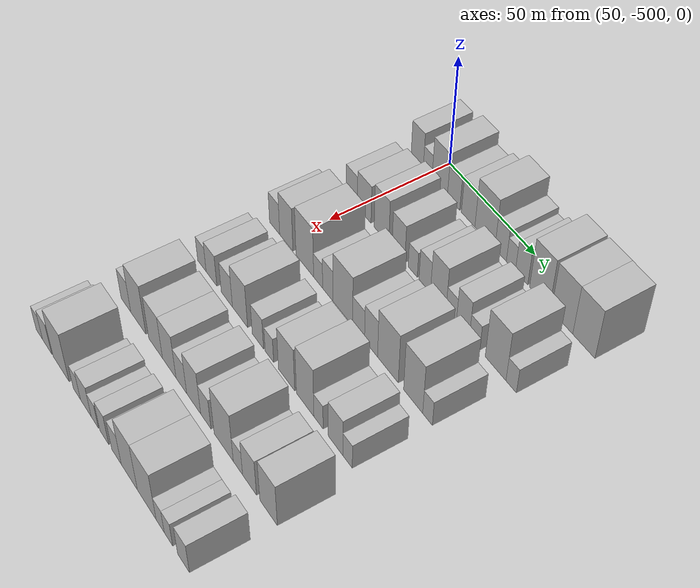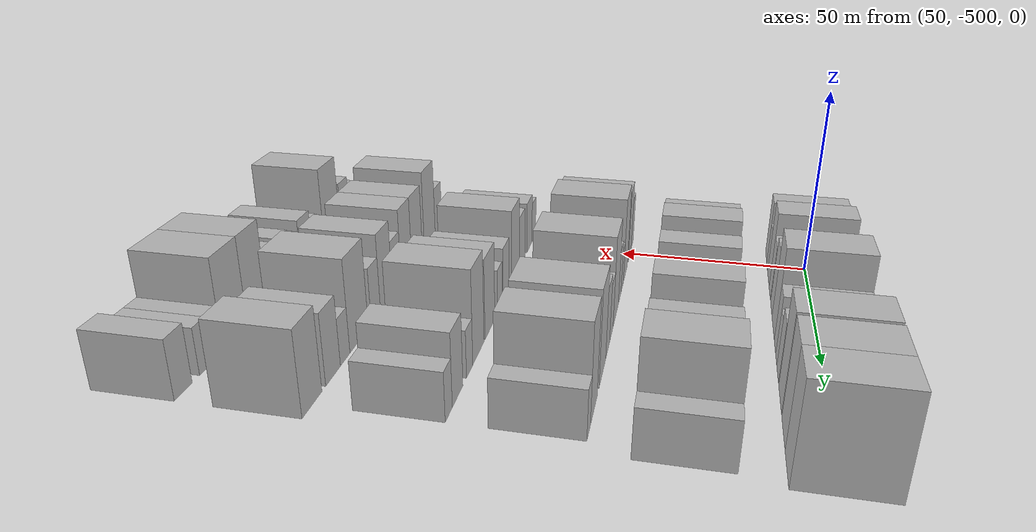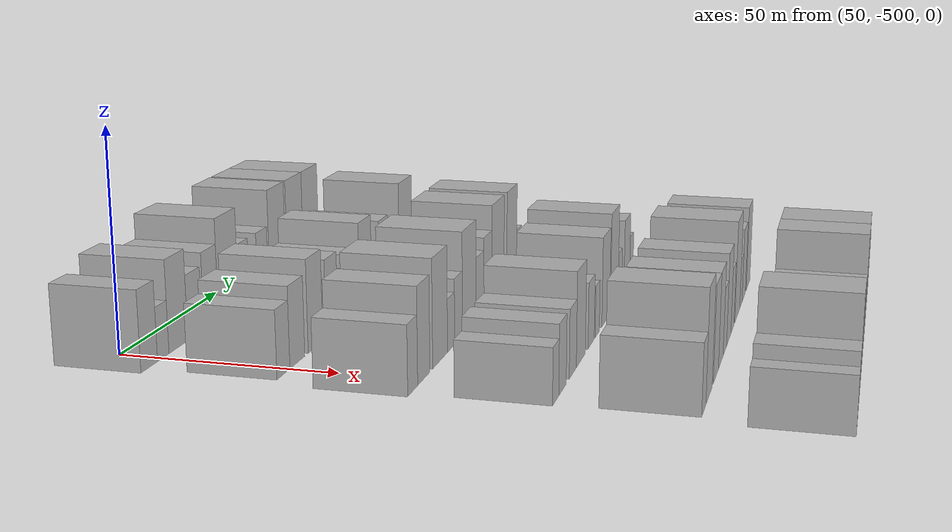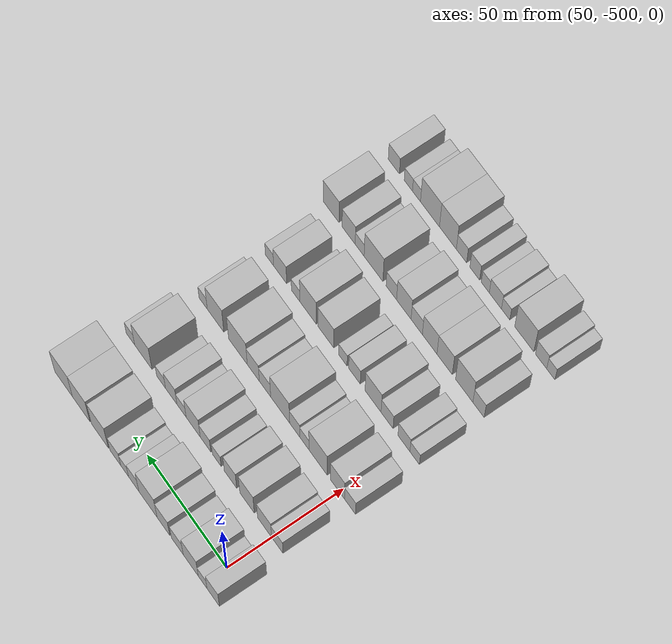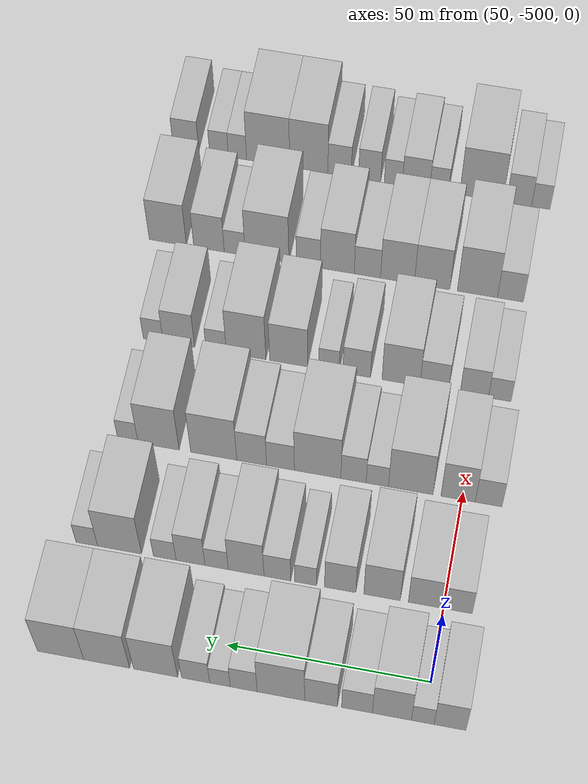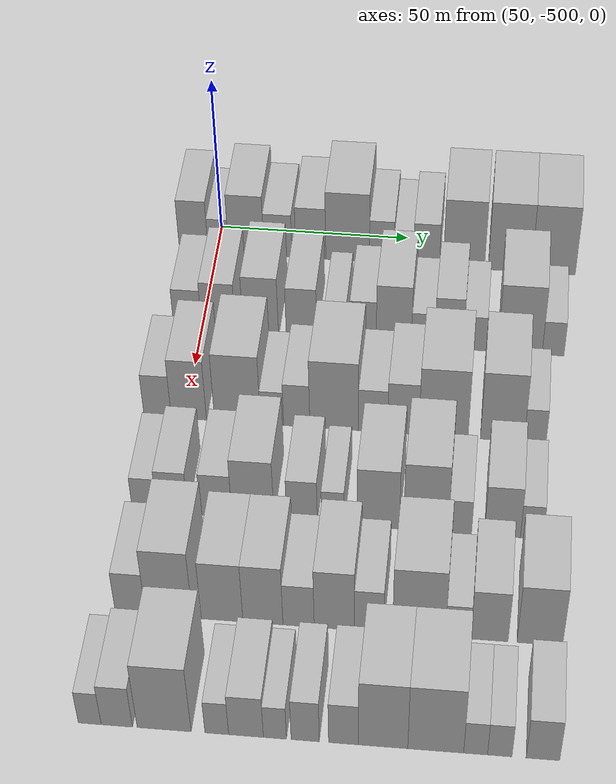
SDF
<sdf version="1.6">
 <world name="default">
  <model name="building_1">
   <static>1</static>
   <pose>50.0000 -506.1612 0 0.000000 0.000000 0.000000</pose>
   <link name="link">
    <pose>0 0 9.00 0 0 0</pose>
    <collision name="collision"><geometry><box><size>20.0000 7.6777 18.0000</size></box></geometry></collision>
    <visual name="visual">
     <cast_shadows>0</cast_shadows>
     <geometry><box><size>20.0000 7.6777 18.0000</size></box></geometry>
     <material>
      <script>
       <uri>model://HANNAS_wall/materials/scripts</uri>
       <uri>model://HANNAS_wall/materials/textures</uri>
       <name>vrc/HANNAS_wall</name>
      </script>
     </material>
    </visual>
   </link>
  </model>
  <model name="building_2">
   <static>1</static>
   <pose>50.0000 -499.5940 0 0.000000 0.000000 0.000000</pose>
   <link name="link">
    <pose>0 0 6.00 0 0 0</pose>
    <collision name="collision"><geometry><box><size>20.0000 5.4566 12.0000</size></box></geometry></collision>
    <visual name="visual">
     <cast_shadows>0</cast_shadows>
     <geometry><box><size>20.0000 5.4566 12.0000</size></box></geometry>
     <material>
      <script>
       <uri>model://HANNAS_wall/materials/scripts</uri>
       <uri>model://HANNAS_wall/materials/textures</uri>
       <name>vrc/HANNAS_wall</name>
      </script>
     </material>
    </visual>
   </link>
  </model>
  <model name="building_3">
   <static>1</static>
   <pose>50.0000 -492.1491 0 0.000000 0.000000 0.000000</pose>
   <link name="link">
    <pose>0 0 10.50 0 0 0</pose>
    <collision name="collision"><geometry><box><size>20.0000 9.4333 21.0000</size></box></geometry></collision>
    <visual name="visual">
     <cast_shadows>0</cast_shadows>
     <geometry><box><size>20.0000 9.4333 21.0000</size></box></geometry>
     <material>
      <script>
       <uri>model://HANNAS_wall/materials/scripts</uri>
       <uri>model://HANNAS_wall/materials/textures</uri>
       <name>vrc/HANNAS_wall</name>
      </script>
     </material>
    </visual>
   </link>
  </model>
  <model name="building_4">
   <static>1</static>
   <pose>50.0000 -483.7056 0 0.000000 0.000000 0.000000</pose>
   <link name="link">
    <pose>0 0 7.50 0 0 0</pose>
    <collision name="collision"><geometry><box><size>20.0000 7.4537 15.0000</size></box></geometry></collision>
    <visual name="visual">
     <cast_shadows>0</cast_shadows>
     <geometry><box><size>20.0000 7.4537 15.0000</size></box></geometry>
     <material>
      <script>
       <uri>model://HANNAS_wall/materials/scripts</uri>
       <uri>model://HANNAS_wall/materials/textures</uri>
       <name>vrc/HANNAS_wall</name>
      </script>
     </material>
    </visual>
   </link>
  </model>
  <model name="building_5">
   <static>1</static>
   <pose>50.0000 -474.9887 0 0.000000 0.000000 0.000000</pose>
   <link name="link">
    <pose>0 0 9.00 0 0 0</pose>
    <collision name="collision"><geometry><box><size>20.0000 7.9801 18.0000</size></box></geometry></collision>
    <visual name="visual">
     <cast_shadows>0</cast_shadows>
     <geometry><box><size>20.0000 7.9801 18.0000</size></box></geometry>
     <material>
      <script>
       <uri>model://HANNAS_wall/materials/scripts</uri>
       <uri>model://HANNAS_wall/materials/textures</uri>
       <name>vrc/HANNAS_wall</name>
      </script>
     </material>
    </visual>
   </link>
  </model>
  <model name="building_6">
   <static>1</static>
   <pose>50.0000 -465.2205 0 0.000000 0.000000 0.000000</pose>
   <link name="link">
    <pose>0 0 12.00 0 0 0</pose>
    <collision name="collision"><geometry><box><size>20.0000 11.5562 24.0000</size></box></geometry></collision>
    <visual name="visual">
     <cast_shadows>0</cast_shadows>
     <geometry><box><size>20.0000 11.5562 24.0000</size></box></geometry>
     <material>
      <script>
       <uri>model://HANNAS_wall/materials/scripts</uri>
       <uri>model://HANNAS_wall/materials/textures</uri>
       <name>vrc/HANNAS_wall</name>
      </script>
     </material>
    </visual>
   </link>
  </model>
  <model name="building_7">
   <static>1</static>
   <pose>50.0000 -456.1602 0 0.000000 0.000000 0.000000</pose>
   <link name="link">
    <pose>0 0 7.50 0 0 0</pose>
    <collision name="collision"><geometry><box><size>20.0000 6.5645 15.0000</size></box></geometry></collision>
    <visual name="visual">
     <cast_shadows>0</cast_shadows>
     <geometry><box><size>20.0000 6.5645 15.0000</size></box></geometry>
     <material>
      <script>
       <uri>model://HANNAS_wall/materials/scripts</uri>
       <uri>model://HANNAS_wall/materials/textures</uri>
       <name>vrc/HANNAS_wall</name>
      </script>
     </material>
    </visual>
   </link>
  </model>
  <model name="building_8">
   <static>1</static>
   <pose>50.0000 -450.3521 0 0.000000 0.000000 0.000000</pose>
   <link name="link">
    <pose>0 0 6.00 0 0 0</pose>
    <collision name="collision"><geometry><box><size>20.0000 5.0517 12.0000</size></box></geometry></collision>
    <visual name="visual">
     <cast_shadows>0</cast_shadows>
     <geometry><box><size>20.0000 5.0517 12.0000</size></box></geometry>
     <material>
      <script>
       <uri>model://HANNAS_wall/materials/scripts</uri>
       <uri>model://HANNAS_wall/materials/textures</uri>
       <name>vrc/HANNAS_wall</name>
      </script>
     </material>
    </visual>
   </link>
  </model>
  <model name="building_9">
   <static>1</static>
   <pose>50.0000 -444.3844 0 0.000000 0.000000 0.000000</pose>
   <link name="link">
    <pose>0 0 7.50 0 0 0</pose>
    <collision name="collision"><geometry><box><size>20.0000 6.8837 15.0000</size></box></geometry></collision>
    <visual name="visual">
     <cast_shadows>0</cast_shadows>
     <geometry><box><size>20.0000 6.8837 15.0000</size></box></geometry>
     <material>
      <script>
       <uri>model://HANNAS_wall/materials/scripts</uri>
       <uri>model://HANNAS_wall/materials/textures</uri>
       <name>vrc/HANNAS_wall</name>
      </script>
     </material>
    </visual>
   </link>
  </model>
  <model name="building_10">
   <static>1</static>
   <pose>50.0000 -434.5352 0 0.000000 0.000000 0.000000</pose>
   <link name="link">
    <pose>0 0 12.00 0 0 0</pose>
    <collision name="collision"><geometry><box><size>20.0000 10.8148 24.0000</size></box></geometry></collision>
    <visual name="visual">
     <cast_shadows>0</cast_shadows>
     <geometry><box><size>20.0000 10.8148 24.0000</size></box></geometry>
     <material>
      <script>
       <uri>model://HANNAS_wall/materials/scripts</uri>
       <uri>model://HANNAS_wall/materials/textures</uri>
       <name>vrc/HANNAS_wall</name>
      </script>
     </material>
    </visual>
   </link>
  </model>
  <model name="building_11">
   <static>1</static>
   <pose>50.0000 -422.4668 0 0.000000 0.000000 0.000000</pose>
   <link name="link">
    <pose>0 0 12.00 0 0 0</pose>
    <collision name="collision"><geometry><box><size>20.0000 11.3220 24.0000</size></box></geometry></collision>
    <visual name="visual">
     <cast_shadows>0</cast_shadows>
     <geometry><box><size>20.0000 11.3220 24.0000</size></box></geometry>
     <material>
      <script>
       <uri>model://HANNAS_wall/materials/scripts</uri>
       <uri>model://HANNAS_wall/materials/textures</uri>
       <name>vrc/HANNAS_wall</name>
      </script>
     </material>
    </visual>
   </link>
  </model>
  <model name="building_12">
   <static>1</static>
   <pose>50.0000 -411.0667 0 0.000000 0.000000 0.000000</pose>
   <link name="link">
    <pose>0 0 12.00 0 0 0</pose>
    <collision name="collision"><geometry><box><size>20.0000 11.4783 24.0000</size></box></geometry></collision>
    <visual name="visual">
     <cast_shadows>0</cast_shadows>
     <geometry><box><size>20.0000 11.4783 24.0000</size></box></geometry>
     <material>
      <script>
       <uri>model://HANNAS_wall/materials/scripts</uri>
       <uri>model://HANNAS_wall/materials/textures</uri>
       <name>vrc/HANNAS_wall</name>
      </script>
     </material>
    </visual>
   </link>
  </model>
  <model name="building_117">
   <static>1</static>
   <pose>79.0000 -503.4254 0 0.000000 0.000000 0.000000</pose>
   <link name="link">
    <pose>0 0 7.50 0 0 0</pose>
    <collision name="collision"><geometry><box><size>20.0000 7.1491 15.0000</size></box></geometry></collision>
    <visual name="visual">
     <cast_shadows>0</cast_shadows>
     <geometry><box><size>20.0000 7.1491 15.0000</size></box></geometry>
     <material>
      <script>
       <uri>model://HANNAS_wall/materials/scripts</uri>
       <uri>model://HANNAS_wall/materials/textures</uri>
       <name>vrc/HANNAS_wall</name>
      </script>
     </material>
    </visual>
   </link>
  </model>
  <model name="building_118">
   <static>1</static>
   <pose>79.0000 -495.5252 0 0.000000 0.000000 0.000000</pose>
   <link name="link">
    <pose>0 0 9.00 0 0 0</pose>
    <collision name="collision"><geometry><box><size>20.0000 8.6513 18.0000</size></box></geometry></collision>
    <visual name="visual">
     <cast_shadows>0</cast_shadows>
     <geometry><box><size>20.0000 8.6513 18.0000</size></box></geometry>
     <material>
      <script>
       <uri>model://HANNAS_wall/materials/scripts</uri>
       <uri>model://HANNAS_wall/materials/textures</uri>
       <name>vrc/HANNAS_wall</name>
      </script>
     </material>
    </visual>
   </link>
  </model>
  <model name="building_119">
   <static>1</static>
   <pose>79.0000 -484.6853 0 0.000000 0.000000 0.000000</pose>
   <link name="link">
    <pose>0 0 10.50 0 0 0</pose>
    <collision name="collision"><geometry><box><size>20.0000 9.0285 21.0000</size></box></geometry></collision>
    <visual name="visual">
     <cast_shadows>0</cast_shadows>
     <geometry><box><size>20.0000 9.0285 21.0000</size></box></geometry>
     <material>
      <script>
       <uri>model://HANNAS_wall/materials/scripts</uri>
       <uri>model://HANNAS_wall/materials/textures</uri>
       <name>vrc/HANNAS_wall</name>
      </script>
     </material>
    </visual>
   </link>
  </model>
  <model name="building_120">
   <static>1</static>
   <pose>79.0000 -474.2944 0 0.000000 0.000000 0.000000</pose>
   <link name="link">
    <pose>0 0 9.00 0 0 0</pose>
    <collision name="collision"><geometry><box><size>20.0000 7.7532 18.0000</size></box></geometry></collision>
    <visual name="visual">
     <cast_shadows>0</cast_shadows>
     <geometry><box><size>20.0000 7.7532 18.0000</size></box></geometry>
     <material>
      <script>
       <uri>model://HANNAS_wall/materials/scripts</uri>
       <uri>model://HANNAS_wall/materials/textures</uri>
       <name>vrc/HANNAS_wall</name>
      </script>
     </material>
    </visual>
   </link>
  </model>
  <model name="building_121">
   <static>1</static>
   <pose>79.0000 -465.6916 0 0.000000 0.000000 0.000000</pose>
   <link name="link">
    <pose>0 0 6.00 0 0 0</pose>
    <collision name="collision"><geometry><box><size>20.0000 5.4524 12.0000</size></box></geometry></collision>
    <visual name="visual">
     <cast_shadows>0</cast_shadows>
     <geometry><box><size>20.0000 5.4524 12.0000</size></box></geometry>
     <material>
      <script>
       <uri>model://HANNAS_wall/materials/scripts</uri>
       <uri>model://HANNAS_wall/materials/textures</uri>
       <name>vrc/HANNAS_wall</name>
      </script>
     </material>
    </visual>
   </link>
  </model>
  <model name="building_122">
   <static>1</static>
   <pose>79.0000 -458.6153 0 0.000000 0.000000 0.000000</pose>
   <link name="link">
    <pose>0 0 7.50 0 0 0</pose>
    <collision name="collision"><geometry><box><size>20.0000 6.7001 15.0000</size></box></geometry></collision>
    <visual name="visual">
     <cast_shadows>0</cast_shadows>
     <geometry><box><size>20.0000 6.7001 15.0000</size></box></geometry>
     <material>
      <script>
       <uri>model://HANNAS_wall/materials/scripts</uri>
       <uri>model://HANNAS_wall/materials/textures</uri>
       <name>vrc/HANNAS_wall</name>
      </script>
     </material>
    </visual>
   </link>
  </model>
  <model name="building_123">
   <static>1</static>
   <pose>79.0000 -450.7847 0 0.000000 0.000000 0.000000</pose>
   <link name="link">
    <pose>0 0 10.50 0 0 0</pose>
    <collision name="collision"><geometry><box><size>20.0000 8.9609 21.0000</size></box></geometry></collision>
    <visual name="visual">
     <cast_shadows>0</cast_shadows>
     <geometry><box><size>20.0000 8.9609 21.0000</size></box></geometry>
     <material>
      <script>
       <uri>model://HANNAS_wall/materials/scripts</uri>
       <uri>model://HANNAS_wall/materials/textures</uri>
       <name>vrc/HANNAS_wall</name>
      </script>
     </material>
    </visual>
   </link>
  </model>
  <model name="building_124">
   <static>1</static>
   <pose>79.0000 -443.3836 0 0.000000 0.000000 0.000000</pose>
   <link name="link">
    <pose>0 0 6.00 0 0 0</pose>
    <collision name="collision"><geometry><box><size>20.0000 5.8413 12.0000</size></box></geometry></collision>
    <visual name="visual">
     <cast_shadows>0</cast_shadows>
     <geometry><box><size>20.0000 5.8413 12.0000</size></box></geometry>
     <material>
      <script>
       <uri>model://HANNAS_wall/materials/scripts</uri>
       <uri>model://HANNAS_wall/materials/textures</uri>
       <name>vrc/HANNAS_wall</name>
      </script>
     </material>
    </visual>
   </link>
  </model>
  <model name="building_125">
   <static>1</static>
   <pose>79.0000 -436.8195 0 0.000000 0.000000 0.000000</pose>
   <link name="link">
    <pose>0 0 9.00 0 0 0</pose>
    <collision name="collision"><geometry><box><size>20.0000 7.2870 18.0000</size></box></geometry></collision>
    <visual name="visual">
     <cast_shadows>0</cast_shadows>
     <geometry><box><size>20.0000 7.2870 18.0000</size></box></geometry>
     <material>
      <script>
       <uri>model://HANNAS_wall/materials/scripts</uri>
       <uri>model://HANNAS_wall/materials/textures</uri>
       <name>vrc/HANNAS_wall</name>
      </script>
     </material>
    </visual>
   </link>
  </model>
  <model name="building_126">
   <static>1</static>
   <pose>79.0000 -430.3095 0 0.000000 0.000000 0.000000</pose>
   <link name="link">
    <pose>0 0 6.00 0 0 0</pose>
    <collision name="collision"><geometry><box><size>20.0000 5.7329 12.0000</size></box></geometry></collision>
    <visual name="visual">
     <cast_shadows>0</cast_shadows>
     <geometry><box><size>20.0000 5.7329 12.0000</size></box></geometry>
     <material>
      <script>
       <uri>model://HANNAS_wall/materials/scripts</uri>
       <uri>model://HANNAS_wall/materials/textures</uri>
       <name>vrc/HANNAS_wall</name>
      </script>
     </material>
    </visual>
   </link>
  </model>
  <model name="building_127">
   <static>1</static>
   <pose>79.0000 -418.8748 0 0.000000 0.000000 0.000000</pose>
   <link name="link">
    <pose>0 0 12.00 0 0 0</pose>
    <collision name="collision"><geometry><box><size>20.0000 11.1365 24.0000</size></box></geometry></collision>
    <visual name="visual">
     <cast_shadows>0</cast_shadows>
     <geometry><box><size>20.0000 11.1365 24.0000</size></box></geometry>
     <material>
      <script>
       <uri>model://HANNAS_wall/materials/scripts</uri>
       <uri>model://HANNAS_wall/materials/textures</uri>
       <name>vrc/HANNAS_wall</name>
      </script>
     </material>
    </visual>
   </link>
  </model>
  <model name="building_128">
   <static>1</static>
   <pose>79.0000 -410.5556 0 0.000000 0.000000 0.000000</pose>
   <link name="link">
    <pose>0 0 6.00 0 0 0</pose>
    <collision name="collision"><geometry><box><size>20.0000 5.5021 12.0000</size></box></geometry></collision>
    <visual name="visual">
     <cast_shadows>0</cast_shadows>
     <geometry><box><size>20.0000 5.5021 12.0000</size></box></geometry>
     <material>
      <script>
       <uri>model://HANNAS_wall/materials/scripts</uri>
       <uri>model://HANNAS_wall/materials/textures</uri>
       <name>vrc/HANNAS_wall</name>
      </script>
     </material>
    </visual>
   </link>
  </model>
  <model name="building_238">
   <static>1</static>
   <pose>108.0000 -506.6214 0 0.000000 0.000000 0.000000</pose>
   <link name="link">
    <pose>0 0 7.50 0 0 0</pose>
    <collision name="collision"><geometry><box><size>20.0000 6.7572 15.0000</size></box></geometry></collision>
    <visual name="visual">
     <cast_shadows>0</cast_shadows>
     <geometry><box><size>20.0000 6.7572 15.0000</size></box></geometry>
     <material>
      <script>
       <uri>model://HANNAS_wall/materials/scripts</uri>
       <uri>model://HANNAS_wall/materials/textures</uri>
       <name>vrc/HANNAS_wall</name>
      </script>
     </material>
    </visual>
   </link>
  </model>
  <model name="building_239">
   <static>1</static>
   <pose>108.0000 -498.8970 0 0.000000 0.000000 0.000000</pose>
   <link name="link">
    <pose>0 0 10.50 0 0 0</pose>
    <collision name="collision"><geometry><box><size>20.0000 8.6917 21.0000</size></box></geometry></collision>
    <visual name="visual">
     <cast_shadows>0</cast_shadows>
     <geometry><box><size>20.0000 8.6917 21.0000</size></box></geometry>
     <material>
      <script>
       <uri>model://HANNAS_wall/materials/scripts</uri>
       <uri>model://HANNAS_wall/materials/textures</uri>
       <name>vrc/HANNAS_wall</name>
      </script>
     </material>
    </visual>
   </link>
  </model>
  <model name="building_240">
   <static>1</static>
   <pose>108.0000 -486.8994 0 0.000000 0.000000 0.000000</pose>
   <link name="link">
    <pose>0 0 12.00 0 0 0</pose>
    <collision name="collision"><geometry><box><size>20.0000 11.3034 24.0000</size></box></geometry></collision>
    <visual name="visual">
     <cast_shadows>0</cast_shadows>
     <geometry><box><size>20.0000 11.3034 24.0000</size></box></geometry>
     <material>
      <script>
       <uri>model://HANNAS_wall/materials/scripts</uri>
       <uri>model://HANNAS_wall/materials/textures</uri>
       <name>vrc/HANNAS_wall</name>
      </script>
     </material>
    </visual>
   </link>
  </model>
  <model name="building_241">
   <static>1</static>
   <pose>108.0000 -478.4100 0 0.000000 0.000000 0.000000</pose>
   <link name="link">
    <pose>0 0 6.00 0 0 0</pose>
    <collision name="collision"><geometry><box><size>20.0000 5.6754 12.0000</size></box></geometry></collision>
    <visual name="visual">
     <cast_shadows>0</cast_shadows>
     <geometry><box><size>20.0000 5.6754 12.0000</size></box></geometry>
     <material>
      <script>
       <uri>model://HANNAS_wall/materials/scripts</uri>
       <uri>model://HANNAS_wall/materials/textures</uri>
       <name>vrc/HANNAS_wall</name>
      </script>
     </material>
    </visual>
   </link>
  </model>
  <model name="building_242">
   <static>1</static>
   <pose>108.0000 -472.3529 0 0.000000 0.000000 0.000000</pose>
   <link name="link">
    <pose>0 0 7.50 0 0 0</pose>
    <collision name="collision"><geometry><box><size>20.0000 6.4389 15.0000</size></box></geometry></collision>
    <visual name="visual">
     <cast_shadows>0</cast_shadows>
     <geometry><box><size>20.0000 6.4389 15.0000</size></box></geometry>
     <material>
      <script>
       <uri>model://HANNAS_wall/materials/scripts</uri>
       <uri>model://HANNAS_wall/materials/textures</uri>
       <name>vrc/HANNAS_wall</name>
      </script>
     </material>
    </visual>
   </link>
  </model>
  <model name="building_243">
   <static>1</static>
   <pose>108.0000 -463.1769 0 0.000000 0.000000 0.000000</pose>
   <link name="link">
    <pose>0 0 12.00 0 0 0</pose>
    <collision name="collision"><geometry><box><size>20.0000 11.9130 24.0000</size></box></geometry></collision>
    <visual name="visual">
     <cast_shadows>0</cast_shadows>
     <geometry><box><size>20.0000 11.9130 24.0000</size></box></geometry>
     <material>
      <script>
       <uri>model://HANNAS_wall/materials/scripts</uri>
       <uri>model://HANNAS_wall/materials/textures</uri>
       <name>vrc/HANNAS_wall</name>
      </script>
     </material>
    </visual>
   </link>
  </model>
  <model name="building_244">
   <static>1</static>
   <pose>108.0000 -453.6483 0 0.000000 0.000000 0.000000</pose>
   <link name="link">
    <pose>0 0 7.50 0 0 0</pose>
    <collision name="collision"><geometry><box><size>20.0000 7.1442 15.0000</size></box></geometry></collision>
    <visual name="visual">
     <cast_shadows>0</cast_shadows>
     <geometry><box><size>20.0000 7.1442 15.0000</size></box></geometry>
     <material>
      <script>
       <uri>model://HANNAS_wall/materials/scripts</uri>
       <uri>model://HANNAS_wall/materials/textures</uri>
       <name>vrc/HANNAS_wall</name>
      </script>
     </material>
    </visual>
   </link>
  </model>
  <model name="building_245">
   <static>1</static>
   <pose>108.0000 -446.2573 0 0.000000 0.000000 0.000000</pose>
   <link name="link">
    <pose>0 0 9.00 0 0 0</pose>
    <collision name="collision"><geometry><box><size>20.0000 7.6379 18.0000</size></box></geometry></collision>
    <visual name="visual">
     <cast_shadows>0</cast_shadows>
     <geometry><box><size>20.0000 7.6379 18.0000</size></box></geometry>
     <material>
      <script>
       <uri>model://HANNAS_wall/materials/scripts</uri>
       <uri>model://HANNAS_wall/materials/textures</uri>
       <name>vrc/HANNAS_wall</name>
      </script>
     </material>
    </visual>
   </link>
  </model>
  <model name="building_246">
   <static>1</static>
   <pose>108.0000 -436.4902 0 0.000000 0.000000 0.000000</pose>
   <link name="link">
    <pose>0 0 12.00 0 0 0</pose>
    <collision name="collision"><geometry><box><size>20.0000 11.8962 24.0000</size></box></geometry></collision>
    <visual name="visual">
     <cast_shadows>0</cast_shadows>
     <geometry><box><size>20.0000 11.8962 24.0000</size></box></geometry>
     <material>
      <script>
       <uri>model://HANNAS_wall/materials/scripts</uri>
       <uri>model://HANNAS_wall/materials/textures</uri>
       <name>vrc/HANNAS_wall</name>
      </script>
     </material>
    </visual>
   </link>
  </model>
  <model name="building_247">
   <static>1</static>
   <pose>108.0000 -422.2342 0 0.000000 0.000000 0.000000</pose>
   <link name="link">
    <pose>0 0 12.00 0 0 0</pose>
    <collision name="collision"><geometry><box><size>20.0000 10.6158 24.0000</size></box></geometry></collision>
    <visual name="visual">
     <cast_shadows>0</cast_shadows>
     <geometry><box><size>20.0000 10.6158 24.0000</size></box></geometry>
     <material>
      <script>
       <uri>model://HANNAS_wall/materials/scripts</uri>
       <uri>model://HANNAS_wall/materials/textures</uri>
       <name>vrc/HANNAS_wall</name>
      </script>
     </material>
    </visual>
   </link>
  </model>
  <model name="building_248">
   <static>1</static>
   <pose>108.0000 -414.2929 0 0.000000 0.000000 0.000000</pose>
   <link name="link">
    <pose>0 0 6.00 0 0 0</pose>
    <collision name="collision"><geometry><box><size>20.0000 5.2666 12.0000</size></box></geometry></collision>
    <visual name="visual">
     <cast_shadows>0</cast_shadows>
     <geometry><box><size>20.0000 5.2666 12.0000</size></box></geometry>
     <material>
      <script>
       <uri>model://HANNAS_wall/materials/scripts</uri>
       <uri>model://HANNAS_wall/materials/textures</uri>
       <name>vrc/HANNAS_wall</name>
      </script>
     </material>
    </visual>
   </link>
  </model>
  <model name="building_356">
   <static>1</static>
   <pose>137.0000 -505.0836 0 0.000000 0.000000 0.000000</pose>
   <link name="link">
    <pose>0 0 6.00 0 0 0</pose>
    <collision name="collision"><geometry><box><size>20.0000 5.8329 12.0000</size></box></geometry></collision>
    <visual name="visual">
     <cast_shadows>0</cast_shadows>
     <geometry><box><size>20.0000 5.8329 12.0000</size></box></geometry>
     <material>
      <script>
       <uri>model://HANNAS_wall/materials/scripts</uri>
       <uri>model://HANNAS_wall/materials/textures</uri>
       <name>vrc/HANNAS_wall</name>
      </script>
     </material>
    </visual>
   </link>
  </model>
  <model name="building_357">
   <static>1</static>
   <pose>137.0000 -498.5029 0 0.000000 0.000000 0.000000</pose>
   <link name="link">
    <pose>0 0 7.50 0 0 0</pose>
    <collision name="collision"><geometry><box><size>20.0000 7.3284 15.0000</size></box></geometry></collision>
    <visual name="visual">
     <cast_shadows>0</cast_shadows>
     <geometry><box><size>20.0000 7.3284 15.0000</size></box></geometry>
     <material>
      <script>
       <uri>model://HANNAS_wall/materials/scripts</uri>
       <uri>model://HANNAS_wall/materials/textures</uri>
       <name>vrc/HANNAS_wall</name>
      </script>
     </material>
    </visual>
   </link>
  </model>
  <model name="building_358">
   <static>1</static>
   <pose>137.0000 -488.1258 0 0.000000 0.000000 0.000000</pose>
   <link name="link">
    <pose>0 0 7.50 0 0 0</pose>
    <collision name="collision"><geometry><box><size>20.0000 7.4258 15.0000</size></box></geometry></collision>
    <visual name="visual">
     <cast_shadows>0</cast_shadows>
     <geometry><box><size>20.0000 7.4258 15.0000</size></box></geometry>
     <material>
      <script>
       <uri>model://HANNAS_wall/materials/scripts</uri>
       <uri>model://HANNAS_wall/materials/textures</uri>
       <name>vrc/HANNAS_wall</name>
      </script>
     </material>
    </visual>
   </link>
  </model>
  <model name="building_359">
   <static>1</static>
   <pose>137.0000 -479.4690 0 0.000000 0.000000 0.000000</pose>
   <link name="link">
    <pose>0 0 10.50 0 0 0</pose>
    <collision name="collision"><geometry><box><size>20.0000 9.8878 21.0000</size></box></geometry></collision>
    <visual name="visual">
     <cast_shadows>0</cast_shadows>
     <geometry><box><size>20.0000 9.8878 21.0000</size></box></geometry>
     <material>
      <script>
       <uri>model://HANNAS_wall/materials/scripts</uri>
       <uri>model://HANNAS_wall/materials/textures</uri>
       <name>vrc/HANNAS_wall</name>
      </script>
     </material>
    </visual>
   </link>
  </model>
  <model name="building_360">
   <static>1</static>
   <pose>137.0000 -467.9315 0 0.000000 0.000000 0.000000</pose>
   <link name="link">
    <pose>0 0 7.50 0 0 0</pose>
    <collision name="collision"><geometry><box><size>20.0000 7.1873 15.0000</size></box></geometry></collision>
    <visual name="visual">
     <cast_shadows>0</cast_shadows>
     <geometry><box><size>20.0000 7.1873 15.0000</size></box></geometry>
     <material>
      <script>
       <uri>model://HANNAS_wall/materials/scripts</uri>
       <uri>model://HANNAS_wall/materials/textures</uri>
       <name>vrc/HANNAS_wall</name>
      </script>
     </material>
    </visual>
   </link>
  </model>
  <model name="building_361">
   <static>1</static>
   <pose>137.0000 -460.6858 0 0.000000 0.000000 0.000000</pose>
   <link name="link">
    <pose>0 0 6.00 0 0 0</pose>
    <collision name="collision"><geometry><box><size>20.0000 5.3041 12.0000</size></box></geometry></collision>
    <visual name="visual">
     <cast_shadows>0</cast_shadows>
     <geometry><box><size>20.0000 5.3041 12.0000</size></box></geometry>
     <material>
      <script>
       <uri>model://HANNAS_wall/materials/scripts</uri>
       <uri>model://HANNAS_wall/materials/textures</uri>
       <name>vrc/HANNAS_wall</name>
      </script>
     </material>
    </visual>
   </link>
  </model>
  <model name="building_362">
   <static>1</static>
   <pose>137.0000 -450.0626 0 0.000000 0.000000 0.000000</pose>
   <link name="link">
    <pose>0 0 10.50 0 0 0</pose>
    <collision name="collision"><geometry><box><size>20.0000 9.9423 21.0000</size></box></geometry></collision>
    <visual name="visual">
     <cast_shadows>0</cast_shadows>
     <geometry><box><size>20.0000 9.9423 21.0000</size></box></geometry>
     <material>
      <script>
       <uri>model://HANNAS_wall/materials/scripts</uri>
       <uri>model://HANNAS_wall/materials/textures</uri>
       <name>vrc/HANNAS_wall</name>
      </script>
     </material>
    </visual>
   </link>
  </model>
  <model name="building_363">
   <static>1</static>
   <pose>137.0000 -438.8895 0 0.000000 0.000000 0.000000</pose>
   <link name="link">
    <pose>0 0 12.00 0 0 0</pose>
    <collision name="collision"><geometry><box><size>20.0000 10.4039 24.0000</size></box></geometry></collision>
    <visual name="visual">
     <cast_shadows>0</cast_shadows>
     <geometry><box><size>20.0000 10.4039 24.0000</size></box></geometry>
     <material>
      <script>
       <uri>model://HANNAS_wall/materials/scripts</uri>
       <uri>model://HANNAS_wall/materials/textures</uri>
       <name>vrc/HANNAS_wall</name>
      </script>
     </material>
    </visual>
   </link>
  </model>
  <model name="building_364">
   <static>1</static>
   <pose>137.0000 -430.9836 0 0.000000 0.000000 0.000000</pose>
   <link name="link">
    <pose>0 0 6.00 0 0 0</pose>
    <collision name="collision"><geometry><box><size>20.0000 5.4080 12.0000</size></box></geometry></collision>
    <visual name="visual">
     <cast_shadows>0</cast_shadows>
     <geometry><box><size>20.0000 5.4080 12.0000</size></box></geometry>
     <material>
      <script>
       <uri>model://HANNAS_wall/materials/scripts</uri>
       <uri>model://HANNAS_wall/materials/textures</uri>
       <name>vrc/HANNAS_wall</name>
      </script>
     </material>
    </visual>
   </link>
  </model>
  <model name="building_365">
   <static>1</static>
   <pose>137.0000 -421.1109 0 0.000000 0.000000 0.000000</pose>
   <link name="link">
    <pose>0 0 9.00 0 0 0</pose>
    <collision name="collision"><geometry><box><size>20.0000 8.3374 18.0000</size></box></geometry></collision>
    <visual name="visual">
     <cast_shadows>0</cast_shadows>
     <geometry><box><size>20.0000 8.3374 18.0000</size></box></geometry>
     <material>
      <script>
       <uri>model://HANNAS_wall/materials/scripts</uri>
       <uri>model://HANNAS_wall/materials/textures</uri>
       <name>vrc/HANNAS_wall</name>
      </script>
     </material>
    </visual>
   </link>
  </model>
  <model name="building_366">
   <static>1</static>
   <pose>137.0000 -414.3060 0 0.000000 0.000000 0.000000</pose>
   <link name="link">
    <pose>0 0 6.00 0 0 0</pose>
    <collision name="collision"><geometry><box><size>20.0000 5.2725 12.0000</size></box></geometry></collision>
    <visual name="visual">
     <cast_shadows>0</cast_shadows>
     <geometry><box><size>20.0000 5.2725 12.0000</size></box></geometry>
     <material>
      <script>
       <uri>model://HANNAS_wall/materials/scripts</uri>
       <uri>model://HANNAS_wall/materials/textures</uri>
       <name>vrc/HANNAS_wall</name>
      </script>
     </material>
    </visual>
   </link>
  </model>
  <model name="building_470">
   <static>1</static>
   <pose>166.0000 -503.5606 0 0.000000 0.000000 0.000000</pose>
   <link name="link">
    <pose>0 0 7.50 0 0 0</pose>
    <collision name="collision"><geometry><box><size>20.0000 6.8788 15.0000</size></box></geometry></collision>
    <visual name="visual">
     <cast_shadows>0</cast_shadows>
     <geometry><box><size>20.0000 6.8788 15.0000</size></box></geometry>
     <material>
      <script>
       <uri>model://HANNAS_wall/materials/scripts</uri>
       <uri>model://HANNAS_wall/materials/textures</uri>
       <name>vrc/HANNAS_wall</name>
      </script>
     </material>
    </visual>
   </link>
  </model>
  <model name="building_471">
   <static>1</static>
   <pose>166.0000 -494.8131 0 0.000000 0.000000 0.000000</pose>
   <link name="link">
    <pose>0 0 12.00 0 0 0</pose>
    <collision name="collision"><geometry><box><size>20.0000 10.6162 24.0000</size></box></geometry></collision>
    <visual name="visual">
     <cast_shadows>0</cast_shadows>
     <geometry><box><size>20.0000 10.6162 24.0000</size></box></geometry>
     <material>
      <script>
       <uri>model://HANNAS_wall/materials/scripts</uri>
       <uri>model://HANNAS_wall/materials/textures</uri>
       <name>vrc/HANNAS_wall</name>
      </script>
     </material>
    </visual>
   </link>
  </model>
  <model name="building_472">
   <static>1</static>
   <pose>166.0000 -482.7938 0 0.000000 0.000000 0.000000</pose>
   <link name="link">
    <pose>0 0 10.50 0 0 0</pose>
    <collision name="collision"><geometry><box><size>20.0000 9.4225 21.0000</size></box></geometry></collision>
    <visual name="visual">
     <cast_shadows>0</cast_shadows>
     <geometry><box><size>20.0000 9.4225 21.0000</size></box></geometry>
     <material>
      <script>
       <uri>model://HANNAS_wall/materials/scripts</uri>
       <uri>model://HANNAS_wall/materials/textures</uri>
       <name>vrc/HANNAS_wall</name>
      </script>
     </material>
    </visual>
   </link>
  </model>
  <model name="building_473">
   <static>1</static>
   <pose>166.0000 -473.5747 0 0.000000 0.000000 0.000000</pose>
   <link name="link">
    <pose>0 0 10.50 0 0 0</pose>
    <collision name="collision"><geometry><box><size>20.0000 9.0156 21.0000</size></box></geometry></collision>
    <visual name="visual">
     <cast_shadows>0</cast_shadows>
     <geometry><box><size>20.0000 9.0156 21.0000</size></box></geometry>
     <material>
      <script>
       <uri>model://HANNAS_wall/materials/scripts</uri>
       <uri>model://HANNAS_wall/materials/textures</uri>
       <name>vrc/HANNAS_wall</name>
      </script>
     </material>
    </visual>
   </link>
  </model>
  <model name="building_474">
   <static>1</static>
   <pose>166.0000 -465.5535 0 0.000000 0.000000 0.000000</pose>
   <link name="link">
    <pose>0 0 7.50 0 0 0</pose>
    <collision name="collision"><geometry><box><size>20.0000 7.0268 15.0000</size></box></geometry></collision>
    <visual name="visual">
     <cast_shadows>0</cast_shadows>
     <geometry><box><size>20.0000 7.0268 15.0000</size></box></geometry>
     <material>
      <script>
       <uri>model://HANNAS_wall/materials/scripts</uri>
       <uri>model://HANNAS_wall/materials/textures</uri>
       <name>vrc/HANNAS_wall</name>
      </script>
     </material>
    </visual>
   </link>
  </model>
  <model name="building_475">
   <static>1</static>
   <pose>166.0000 -457.5224 0 0.000000 0.000000 0.000000</pose>
   <link name="link">
    <pose>0 0 10.50 0 0 0</pose>
    <collision name="collision"><geometry><box><size>20.0000 9.0355 21.0000</size></box></geometry></collision>
    <visual name="visual">
     <cast_shadows>0</cast_shadows>
     <geometry><box><size>20.0000 9.0355 21.0000</size></box></geometry>
     <material>
      <script>
       <uri>model://HANNAS_wall/materials/scripts</uri>
       <uri>model://HANNAS_wall/materials/textures</uri>
       <name>vrc/HANNAS_wall</name>
      </script>
     </material>
    </visual>
   </link>
  </model>
  <model name="building_476">
   <static>1</static>
   <pose>166.0000 -449.7365 0 0.000000 0.000000 0.000000</pose>
   <link name="link">
    <pose>0 0 7.50 0 0 0</pose>
    <collision name="collision"><geometry><box><size>20.0000 6.5362 15.0000</size></box></geometry></collision>
    <visual name="visual">
     <cast_shadows>0</cast_shadows>
     <geometry><box><size>20.0000 6.5362 15.0000</size></box></geometry>
     <material>
      <script>
       <uri>model://HANNAS_wall/materials/scripts</uri>
       <uri>model://HANNAS_wall/materials/textures</uri>
       <name>vrc/HANNAS_wall</name>
      </script>
     </material>
    </visual>
   </link>
  </model>
  <model name="building_477">
   <static>1</static>
   <pose>166.0000 -438.5697 0 0.000000 0.000000 0.000000</pose>
   <link name="link">
    <pose>0 0 12.00 0 0 0</pose>
    <collision name="collision"><geometry><box><size>20.0000 11.7975 24.0000</size></box></geometry></collision>
    <visual name="visual">
     <cast_shadows>0</cast_shadows>
     <geometry><box><size>20.0000 11.7975 24.0000</size></box></geometry>
     <material>
      <script>
       <uri>model://HANNAS_wall/materials/scripts</uri>
       <uri>model://HANNAS_wall/materials/textures</uri>
       <name>vrc/HANNAS_wall</name>
      </script>
     </material>
    </visual>
   </link>
  </model>
  <model name="building_478">
   <static>1</static>
   <pose>166.0000 -429.8494 0 0.000000 0.000000 0.000000</pose>
   <link name="link">
    <pose>0 0 6.00 0 0 0</pose>
    <collision name="collision"><geometry><box><size>20.0000 5.6430 12.0000</size></box></geometry></collision>
    <visual name="visual">
     <cast_shadows>0</cast_shadows>
     <geometry><box><size>20.0000 5.6430 12.0000</size></box></geometry>
     <material>
      <script>
       <uri>model://HANNAS_wall/materials/scripts</uri>
       <uri>model://HANNAS_wall/materials/textures</uri>
       <name>vrc/HANNAS_wall</name>
      </script>
     </material>
    </visual>
   </link>
  </model>
  <model name="building_479">
   <static>1</static>
   <pose>166.0000 -422.8940 0 0.000000 0.000000 0.000000</pose>
   <link name="link">
    <pose>0 0 9.00 0 0 0</pose>
    <collision name="collision"><geometry><box><size>20.0000 8.2679 18.0000</size></box></geometry></collision>
    <visual name="visual">
     <cast_shadows>0</cast_shadows>
     <geometry><box><size>20.0000 8.2679 18.0000</size></box></geometry>
     <material>
      <script>
       <uri>model://HANNAS_wall/materials/scripts</uri>
       <uri>model://HANNAS_wall/materials/textures</uri>
       <name>vrc/HANNAS_wall</name>
      </script>
     </material>
    </visual>
   </link>
  </model>
  <model name="building_480">
   <static>1</static>
   <pose>166.0000 -411.7195 0 0.000000 0.000000 0.000000</pose>
   <link name="link">
    <pose>0 0 10.50 0 0 0</pose>
    <collision name="collision"><geometry><box><size>20.0000 10.0813 21.0000</size></box></geometry></collision>
    <visual name="visual">
     <cast_shadows>0</cast_shadows>
     <geometry><box><size>20.0000 10.0813 21.0000</size></box></geometry>
     <material>
      <script>
       <uri>model://HANNAS_wall/materials/scripts</uri>
       <uri>model://HANNAS_wall/materials/textures</uri>
       <name>vrc/HANNAS_wall</name>
      </script>
     </material>
    </visual>
   </link>
  </model>
  <model name="building_586">
   <static>1</static>
   <pose>195.0000 -507.5143 0 0.000000 0.000000 0.000000</pose>
   <link name="link">
    <pose>0 0 6.00 0 0 0</pose>
    <collision name="collision"><geometry><box><size>20.0000 4.9714 12.0000</size></box></geometry></collision>
    <visual name="visual">
     <cast_shadows>0</cast_shadows>
     <geometry><box><size>20.0000 4.9714 12.0000</size></box></geometry>
     <material>
      <script>
       <uri>model://HANNAS_wall/materials/scripts</uri>
       <uri>model://HANNAS_wall/materials/textures</uri>
       <name>vrc/HANNAS_wall</name>
      </script>
     </material>
    </visual>
   </link>
  </model>
  <model name="building_587">
   <static>1</static>
   <pose>195.0000 -501.6270 0 0.000000 0.000000 0.000000</pose>
   <link name="link">
    <pose>0 0 7.50 0 0 0</pose>
    <collision name="collision"><geometry><box><size>20.0000 6.8033 15.0000</size></box></geometry></collision>
    <visual name="visual">
     <cast_shadows>0</cast_shadows>
     <geometry><box><size>20.0000 6.8033 15.0000</size></box></geometry>
     <material>
      <script>
       <uri>model://HANNAS_wall/materials/scripts</uri>
       <uri>model://HANNAS_wall/materials/textures</uri>
       <name>vrc/HANNAS_wall</name>
      </script>
     </material>
    </visual>
   </link>
  </model>
  <model name="building_588">
   <static>1</static>
   <pose>195.0000 -491.3812 0 0.000000 0.000000 0.000000</pose>
   <link name="link">
    <pose>0 0 12.00 0 0 0</pose>
    <collision name="collision"><geometry><box><size>20.0000 11.6882 24.0000</size></box></geometry></collision>
    <visual name="visual">
     <cast_shadows>0</cast_shadows>
     <geometry><box><size>20.0000 11.6882 24.0000</size></box></geometry>
     <material>
      <script>
       <uri>model://HANNAS_wall/materials/scripts</uri>
       <uri>model://HANNAS_wall/materials/textures</uri>
       <name>vrc/HANNAS_wall</name>
      </script>
     </material>
    </visual>
   </link>
  </model>
  <model name="building_589">
   <static>1</static>
   <pose>195.0000 -479.9907 0 0.000000 0.000000 0.000000</pose>
   <link name="link">
    <pose>0 0 6.00 0 0 0</pose>
    <collision name="collision"><geometry><box><size>20.0000 5.0928 12.0000</size></box></geometry></collision>
    <visual name="visual">
     <cast_shadows>0</cast_shadows>
     <geometry><box><size>20.0000 5.0928 12.0000</size></box></geometry>
     <material>
      <script>
       <uri>model://HANNAS_wall/materials/scripts</uri>
       <uri>model://HANNAS_wall/materials/textures</uri>
       <name>vrc/HANNAS_wall</name>
      </script>
     </material>
    </visual>
   </link>
  </model>
  <model name="building_590">
   <static>1</static>
   <pose>195.0000 -473.6963 0 0.000000 0.000000 0.000000</pose>
   <link name="link">
    <pose>0 0 7.50 0 0 0</pose>
    <collision name="collision"><geometry><box><size>20.0000 7.4961 15.0000</size></box></geometry></collision>
    <visual name="visual">
     <cast_shadows>0</cast_shadows>
     <geometry><box><size>20.0000 7.4961 15.0000</size></box></geometry>
     <material>
      <script>
       <uri>model://HANNAS_wall/materials/scripts</uri>
       <uri>model://HANNAS_wall/materials/textures</uri>
       <name>vrc/HANNAS_wall</name>
      </script>
     </material>
    </visual>
   </link>
  </model>
  <model name="building_591">
   <static>1</static>
   <pose>195.0000 -467.4723 0 0.000000 0.000000 0.000000</pose>
   <link name="link">
    <pose>0 0 6.00 0 0 0</pose>
    <collision name="collision"><geometry><box><size>20.0000 4.9518 12.0000</size></box></geometry></collision>
    <visual name="visual">
     <cast_shadows>0</cast_shadows>
     <geometry><box><size>20.0000 4.9518 12.0000</size></box></geometry>
     <material>
      <script>
       <uri>model://HANNAS_wall/materials/scripts</uri>
       <uri>model://HANNAS_wall/materials/textures</uri>
       <name>vrc/HANNAS_wall</name>
      </script>
     </material>
    </visual>
   </link>
  </model>
  <model name="building_592">
   <static>1</static>
   <pose>195.0000 -460.9723 0 0.000000 0.000000 0.000000</pose>
   <link name="link">
    <pose>0 0 7.50 0 0 0</pose>
    <collision name="collision"><geometry><box><size>20.0000 6.0482 15.0000</size></box></geometry></collision>
    <visual name="visual">
     <cast_shadows>0</cast_shadows>
     <geometry><box><size>20.0000 6.0482 15.0000</size></box></geometry>
     <material>
      <script>
       <uri>model://HANNAS_wall/materials/scripts</uri>
       <uri>model://HANNAS_wall/materials/textures</uri>
       <name>vrc/HANNAS_wall</name>
      </script>
     </material>
    </visual>
   </link>
  </model>
  <model name="building_593">
   <static>1</static>
   <pose>195.0000 -452.7490 0 0.000000 0.000000 0.000000</pose>
   <link name="link">
    <pose>0 0 7.50 0 0 0</pose>
    <collision name="collision"><geometry><box><size>20.0000 6.3984 15.0000</size></box></geometry></collision>
    <visual name="visual">
     <cast_shadows>0</cast_shadows>
     <geometry><box><size>20.0000 6.3984 15.0000</size></box></geometry>
     <material>
      <script>
       <uri>model://HANNAS_wall/materials/scripts</uri>
       <uri>model://HANNAS_wall/materials/textures</uri>
       <name>vrc/HANNAS_wall</name>
      </script>
     </material>
    </visual>
   </link>
  </model>
  <model name="building_594">
   <static>1</static>
   <pose>195.0000 -444.2872 0 0.000000 0.000000 0.000000</pose>
   <link name="link">
    <pose>0 0 12.00 0 0 0</pose>
    <collision name="collision"><geometry><box><size>20.0000 10.5252 24.0000</size></box></geometry></collision>
    <visual name="visual">
     <cast_shadows>0</cast_shadows>
     <geometry><box><size>20.0000 10.5252 24.0000</size></box></geometry>
     <material>
      <script>
       <uri>model://HANNAS_wall/materials/scripts</uri>
       <uri>model://HANNAS_wall/materials/textures</uri>
       <name>vrc/HANNAS_wall</name>
      </script>
     </material>
    </visual>
   </link>
  </model>
  <model name="building_595">
   <static>1</static>
   <pose>195.0000 -433.0751 0 0.000000 0.000000 0.000000</pose>
   <link name="link">
    <pose>0 0 12.00 0 0 0</pose>
    <collision name="collision"><geometry><box><size>20.0000 11.8989 24.0000</size></box></geometry></collision>
    <visual name="visual">
     <cast_shadows>0</cast_shadows>
     <geometry><box><size>20.0000 11.8989 24.0000</size></box></geometry>
     <material>
      <script>
       <uri>model://HANNAS_wall/materials/scripts</uri>
       <uri>model://HANNAS_wall/materials/textures</uri>
       <name>vrc/HANNAS_wall</name>
      </script>
     </material>
    </visual>
   </link>
  </model>
  <model name="building_596">
   <static>1</static>
   <pose>195.0000 -424.5953 0 0.000000 0.000000 0.000000</pose>
   <link name="link">
    <pose>0 0 6.00 0 0 0</pose>
    <collision name="collision"><geometry><box><size>20.0000 5.0607 12.0000</size></box></geometry></collision>
    <visual name="visual">
     <cast_shadows>0</cast_shadows>
     <geometry><box><size>20.0000 5.0607 12.0000</size></box></geometry>
     <material>
      <script>
       <uri>model://HANNAS_wall/materials/scripts</uri>
       <uri>model://HANNAS_wall/materials/textures</uri>
       <name>vrc/HANNAS_wall</name>
      </script>
     </material>
    </visual>
   </link>
  </model>
  <model name="building_597">
   <static>1</static>
   <pose>195.0000 -419.4701 0 0.000000 0.000000 0.000000</pose>
   <link name="link">
    <pose>0 0 6.00 0 0 0</pose>
    <collision name="collision"><geometry><box><size>20.0000 5.1897 12.0000</size></box></geometry></collision>
    <visual name="visual">
     <cast_shadows>0</cast_shadows>
     <geometry><box><size>20.0000 5.1897 12.0000</size></box></geometry>
     <material>
      <script>
       <uri>model://HANNAS_wall/materials/scripts</uri>
       <uri>model://HANNAS_wall/materials/textures</uri>
       <name>vrc/HANNAS_wall</name>
      </script>
     </material>
    </visual>
   </link>
  </model>
  <model name="building_598">
   <static>1</static>
   <pose>195.0000 -410.3283 0 0.000000 0.000000 0.000000</pose>
   <link name="link">
    <pose>0 0 7.50 0 0 0</pose>
    <collision name="collision"><geometry><box><size>20.0000 7.0940 15.0000</size></box></geometry></collision>
    <visual name="visual">
     <cast_shadows>0</cast_shadows>
     <geometry><box><size>20.0000 7.0940 15.0000</size></box></geometry>
     <material>
      <script>
       <uri>model://HANNAS_wall/materials/scripts</uri>
       <uri>model://HANNAS_wall/materials/textures</uri>
       <name>vrc/HANNAS_wall</name>
      </script>
     </material>
    </visual>
   </link>
  </model>
 </world>
</sdf>
